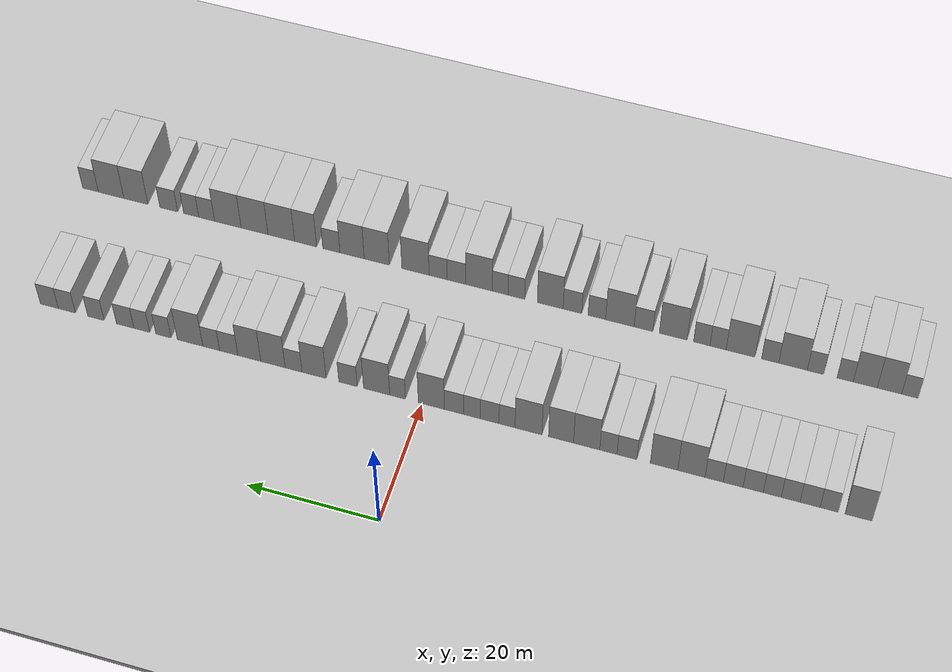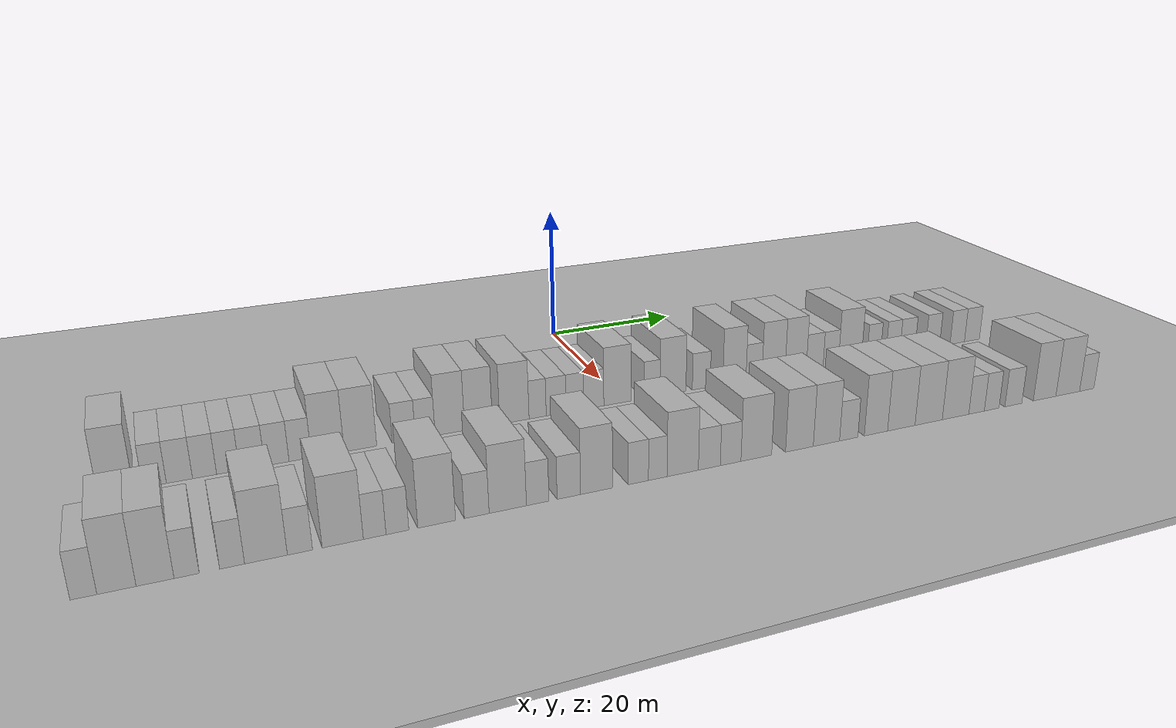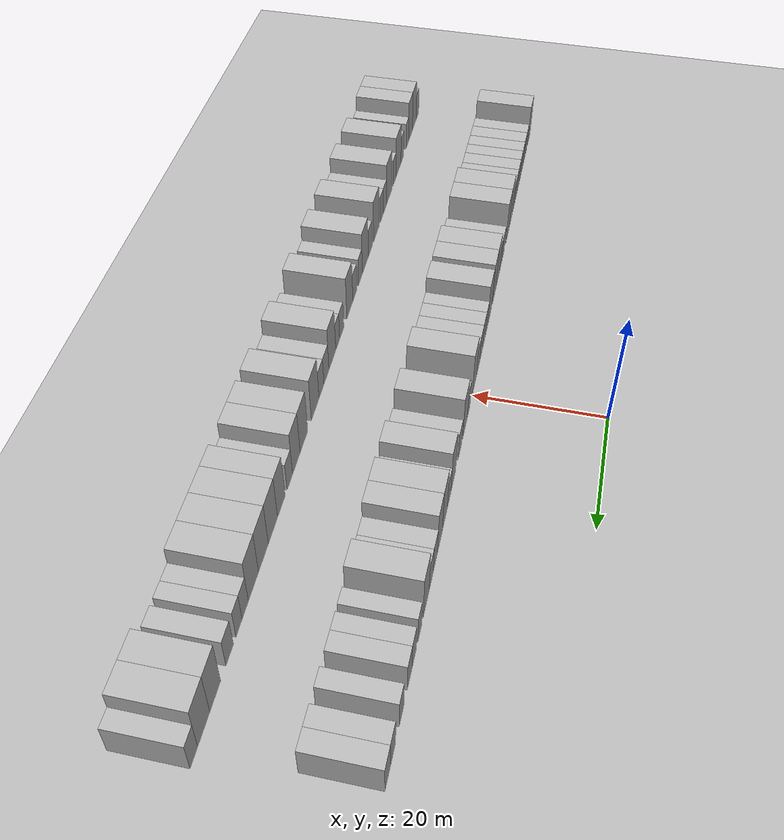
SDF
<sdf version="1.6">
 <world name="default">
  <include><name>ground_plane_1</name><uri>model://HANNAS_ground_plane</uri></include>
  <include>
   <name>ground_plane_2</name>
   <uri>model://HANNAS_ground_plane</uri>
   <pose>100 0 0  0 0 0</pose>
  </include>
  <model name="building_37">
   <static>1</static>
   <pose>25.0000 -65.1978 0 0.000000 0.000000 0.000000</pose>
   <link name="link">
    <pose>0 0 4.50 0 0 0</pose>
    <collision name="collision"><geometry><box><size>10.0000 3.9080 9.0000</size></box></geometry></collision>
    <visual name="visual">
     <cast_shadows>0</cast_shadows>
     <geometry><box><size>10.0000 3.9080 9.0000</size></box></geometry>
     <material>
      <script>
       <uri>model://HANNAS_wall/materials/scripts</uri>
       <uri>model://HANNAS_wall/materials/textures</uri>
       <name>vrc/HANNAS_wall</name>
      </script>
     </material>
    </visual>
   </link>
  </model>
  <model name="building_38">
   <static>1</static>
   <pose>25.0000 -60.9311 0 0.000000 0.000000 0.000000</pose>
   <link name="link">
    <pose>0 0 3.00 0 0 0</pose>
    <collision name="collision"><geometry><box><size>10.0000 2.6255 6.0000</size></box></geometry></collision>
    <visual name="visual">
     <cast_shadows>0</cast_shadows>
     <geometry><box><size>10.0000 2.6255 6.0000</size></box></geometry>
     <material>
      <script>
       <uri>model://HANNAS_wall/materials/scripts</uri>
       <uri>model://HANNAS_wall/materials/textures</uri>
       <name>vrc/HANNAS_wall</name>
      </script>
     </material>
    </visual>
   </link>
  </model>
  <model name="building_39">
   <static>1</static>
   <pose>25.0000 -58.1519 0 0.000000 0.000000 0.000000</pose>
   <link name="link">
    <pose>0 0 3.00 0 0 0</pose>
    <collision name="collision"><geometry><box><size>10.0000 2.9329 6.0000</size></box></geometry></collision>
    <visual name="visual">
     <cast_shadows>0</cast_shadows>
     <geometry><box><size>10.0000 2.9329 6.0000</size></box></geometry>
     <material>
      <script>
       <uri>model://HANNAS_wall/materials/scripts</uri>
       <uri>model://HANNAS_wall/materials/textures</uri>
       <name>vrc/HANNAS_wall</name>
      </script>
     </material>
    </visual>
   </link>
  </model>
  <model name="building_40">
   <static>1</static>
   <pose>25.0000 -55.3146 0 0.000000 0.000000 0.000000</pose>
   <link name="link">
    <pose>0 0 3.00 0 0 0</pose>
    <collision name="collision"><geometry><box><size>10.0000 2.7417 6.0000</size></box></geometry></collision>
    <visual name="visual">
     <cast_shadows>0</cast_shadows>
     <geometry><box><size>10.0000 2.7417 6.0000</size></box></geometry>
     <material>
      <script>
       <uri>model://HANNAS_wall/materials/scripts</uri>
       <uri>model://HANNAS_wall/materials/textures</uri>
       <name>vrc/HANNAS_wall</name>
      </script>
     </material>
    </visual>
   </link>
  </model>
  <model name="building_41">
   <static>1</static>
   <pose>25.0000 -52.6261 0 0.000000 0.000000 0.000000</pose>
   <link name="link">
    <pose>0 0 3.00 0 0 0</pose>
    <collision name="collision"><geometry><box><size>10.0000 2.6354 6.0000</size></box></geometry></collision>
    <visual name="visual">
     <cast_shadows>0</cast_shadows>
     <geometry><box><size>10.0000 2.6354 6.0000</size></box></geometry>
     <material>
      <script>
       <uri>model://HANNAS_wall/materials/scripts</uri>
       <uri>model://HANNAS_wall/materials/textures</uri>
       <name>vrc/HANNAS_wall</name>
      </script>
     </material>
    </visual>
   </link>
  </model>
  <model name="building_42">
   <static>1</static>
   <pose>25.0000 -49.8273 0 0.000000 0.000000 0.000000</pose>
   <link name="link">
    <pose>0 0 3.00 0 0 0</pose>
    <collision name="collision"><geometry><box><size>10.0000 2.9623 6.0000</size></box></geometry></collision>
    <visual name="visual">
     <cast_shadows>0</cast_shadows>
     <geometry><box><size>10.0000 2.9623 6.0000</size></box></geometry>
     <material>
      <script>
       <uri>model://HANNAS_wall/materials/scripts</uri>
       <uri>model://HANNAS_wall/materials/textures</uri>
       <name>vrc/HANNAS_wall</name>
      </script>
     </material>
    </visual>
   </link>
  </model>
  <model name="building_43">
   <static>1</static>
   <pose>25.0000 -46.8888 0 0.000000 0.000000 0.000000</pose>
   <link name="link">
    <pose>0 0 3.00 0 0 0</pose>
    <collision name="collision"><geometry><box><size>10.0000 2.9148 6.0000</size></box></geometry></collision>
    <visual name="visual">
     <cast_shadows>0</cast_shadows>
     <geometry><box><size>10.0000 2.9148 6.0000</size></box></geometry>
     <material>
      <script>
       <uri>model://HANNAS_wall/materials/scripts</uri>
       <uri>model://HANNAS_wall/materials/textures</uri>
       <name>vrc/HANNAS_wall</name>
      </script>
     </material>
    </visual>
   </link>
  </model>
  <model name="building_44">
   <static>1</static>
   <pose>25.0000 -44.0853 0 0.000000 0.000000 0.000000</pose>
   <link name="link">
    <pose>0 0 3.00 0 0 0</pose>
    <collision name="collision"><geometry><box><size>10.0000 2.6921 6.0000</size></box></geometry></collision>
    <visual name="visual">
     <cast_shadows>0</cast_shadows>
     <geometry><box><size>10.0000 2.6921 6.0000</size></box></geometry>
     <material>
      <script>
       <uri>model://HANNAS_wall/materials/scripts</uri>
       <uri>model://HANNAS_wall/materials/textures</uri>
       <name>vrc/HANNAS_wall</name>
      </script>
     </material>
    </visual>
   </link>
  </model>
  <model name="building_45">
   <static>1</static>
   <pose>25.0000 -40.7205 0 0.000000 0.000000 0.000000</pose>
   <link name="link">
    <pose>0 0 4.50 0 0 0</pose>
    <collision name="collision"><geometry><box><size>10.0000 4.0376 9.0000</size></box></geometry></collision>
    <visual name="visual">
     <cast_shadows>0</cast_shadows>
     <geometry><box><size>10.0000 4.0376 9.0000</size></box></geometry>
     <material>
      <script>
       <uri>model://HANNAS_wall/materials/scripts</uri>
       <uri>model://HANNAS_wall/materials/textures</uri>
       <name>vrc/HANNAS_wall</name>
      </script>
     </material>
    </visual>
   </link>
  </model>
  <model name="building_46">
   <static>1</static>
   <pose>25.0000 -36.6584 0 0.000000 0.000000 0.000000</pose>
   <link name="link">
    <pose>0 0 4.50 0 0 0</pose>
    <collision name="collision"><geometry><box><size>10.0000 4.0865 9.0000</size></box></geometry></collision>
    <visual name="visual">
     <cast_shadows>0</cast_shadows>
     <geometry><box><size>10.0000 4.0865 9.0000</size></box></geometry>
     <material>
      <script>
       <uri>model://HANNAS_wall/materials/scripts</uri>
       <uri>model://HANNAS_wall/materials/textures</uri>
       <name>vrc/HANNAS_wall</name>
      </script>
     </material>
    </visual>
   </link>
  </model>
  <model name="building_47">
   <static>1</static>
   <pose>25.0000 -31.1257 0 0.000000 0.000000 0.000000</pose>
   <link name="link">
    <pose>0 0 3.00 0 0 0</pose>
    <collision name="collision"><geometry><box><size>10.0000 2.9789 6.0000</size></box></geometry></collision>
    <visual name="visual">
     <cast_shadows>0</cast_shadows>
     <geometry><box><size>10.0000 2.9789 6.0000</size></box></geometry>
     <material>
      <script>
       <uri>model://HANNAS_wall/materials/scripts</uri>
       <uri>model://HANNAS_wall/materials/textures</uri>
       <name>vrc/HANNAS_wall</name>
      </script>
     </material>
    </visual>
   </link>
  </model>
  <model name="building_48">
   <static>1</static>
   <pose>25.0000 -28.3454 0 0.000000 0.000000 0.000000</pose>
   <link name="link">
    <pose>0 0 3.00 0 0 0</pose>
    <collision name="collision"><geometry><box><size>10.0000 2.5817 6.0000</size></box></geometry></collision>
    <visual name="visual">
     <cast_shadows>0</cast_shadows>
     <geometry><box><size>10.0000 2.5817 6.0000</size></box></geometry>
     <material>
      <script>
       <uri>model://HANNAS_wall/materials/scripts</uri>
       <uri>model://HANNAS_wall/materials/textures</uri>
       <name>vrc/HANNAS_wall</name>
      </script>
     </material>
    </visual>
   </link>
  </model>
  <model name="building_49">
   <static>1</static>
   <pose>25.0000 -25.0832 0 0.000000 0.000000 0.000000</pose>
   <link name="link">
    <pose>0 0 4.50 0 0 0</pose>
    <collision name="collision"><geometry><box><size>10.0000 3.9426 9.0000</size></box></geometry></collision>
    <visual name="visual">
     <cast_shadows>0</cast_shadows>
     <geometry><box><size>10.0000 3.9426 9.0000</size></box></geometry>
     <material>
      <script>
       <uri>model://HANNAS_wall/materials/scripts</uri>
       <uri>model://HANNAS_wall/materials/textures</uri>
       <name>vrc/HANNAS_wall</name>
      </script>
     </material>
    </visual>
   </link>
  </model>
  <model name="building_50">
   <static>1</static>
   <pose>25.0000 -21.2267 0 0.000000 0.000000 0.000000</pose>
   <link name="link">
    <pose>0 0 4.50 0 0 0</pose>
    <collision name="collision"><geometry><box><size>10.0000 3.7704 9.0000</size></box></geometry></collision>
    <visual name="visual">
     <cast_shadows>0</cast_shadows>
     <geometry><box><size>10.0000 3.7704 9.0000</size></box></geometry>
     <material>
      <script>
       <uri>model://HANNAS_wall/materials/scripts</uri>
       <uri>model://HANNAS_wall/materials/textures</uri>
       <name>vrc/HANNAS_wall</name>
      </script>
     </material>
    </visual>
   </link>
  </model>
  <model name="building_51">
   <static>1</static>
   <pose>25.0000 -16.3028 0 0.000000 0.000000 0.000000</pose>
   <link name="link">
    <pose>0 0 4.50 0 0 0</pose>
    <collision name="collision"><geometry><box><size>10.0000 4.0774 9.0000</size></box></geometry></collision>
    <visual name="visual">
     <cast_shadows>0</cast_shadows>
     <geometry><box><size>10.0000 4.0774 9.0000</size></box></geometry>
     <material>
      <script>
       <uri>model://HANNAS_wall/materials/scripts</uri>
       <uri>model://HANNAS_wall/materials/textures</uri>
       <name>vrc/HANNAS_wall</name>
      </script>
     </material>
    </visual>
   </link>
  </model>
  <model name="building_52">
   <static>1</static>
   <pose>25.0000 -13.0524 0 0.000000 0.000000 0.000000</pose>
   <link name="link">
    <pose>0 0 3.00 0 0 0</pose>
    <collision name="collision"><geometry><box><size>10.0000 2.4233 6.0000</size></box></geometry></collision>
    <visual name="visual">
     <cast_shadows>0</cast_shadows>
     <geometry><box><size>10.0000 2.4233 6.0000</size></box></geometry>
     <material>
      <script>
       <uri>model://HANNAS_wall/materials/scripts</uri>
       <uri>model://HANNAS_wall/materials/textures</uri>
       <name>vrc/HANNAS_wall</name>
      </script>
     </material>
    </visual>
   </link>
  </model>
  <model name="building_53">
   <static>1</static>
   <pose>25.0000 -10.4201 0 0.000000 0.000000 0.000000</pose>
   <link name="link">
    <pose>0 0 3.00 0 0 0</pose>
    <collision name="collision"><geometry><box><size>10.0000 2.8413 6.0000</size></box></geometry></collision>
    <visual name="visual">
     <cast_shadows>0</cast_shadows>
     <geometry><box><size>10.0000 2.8413 6.0000</size></box></geometry>
     <material>
      <script>
       <uri>model://HANNAS_wall/materials/scripts</uri>
       <uri>model://HANNAS_wall/materials/textures</uri>
       <name>vrc/HANNAS_wall</name>
      </script>
     </material>
    </visual>
   </link>
  </model>
  <model name="building_54">
   <static>1</static>
   <pose>25.0000 -7.7079 0 0.000000 0.000000 0.000000</pose>
   <link name="link">
    <pose>0 0 3.00 0 0 0</pose>
    <collision name="collision"><geometry><box><size>10.0000 2.5832 6.0000</size></box></geometry></collision>
    <visual name="visual">
     <cast_shadows>0</cast_shadows>
     <geometry><box><size>10.0000 2.5832 6.0000</size></box></geometry>
     <material>
      <script>
       <uri>model://HANNAS_wall/materials/scripts</uri>
       <uri>model://HANNAS_wall/materials/textures</uri>
       <name>vrc/HANNAS_wall</name>
      </script>
     </material>
    </visual>
   </link>
  </model>
  <model name="building_55">
   <static>1</static>
   <pose>25.0000 -4.9535 0 0.000000 0.000000 0.000000</pose>
   <link name="link">
    <pose>0 0 3.00 0 0 0</pose>
    <collision name="collision"><geometry><box><size>10.0000 2.9256 6.0000</size></box></geometry></collision>
    <visual name="visual">
     <cast_shadows>0</cast_shadows>
     <geometry><box><size>10.0000 2.9256 6.0000</size></box></geometry>
     <material>
      <script>
       <uri>model://HANNAS_wall/materials/scripts</uri>
       <uri>model://HANNAS_wall/materials/textures</uri>
       <name>vrc/HANNAS_wall</name>
      </script>
     </material>
    </visual>
   </link>
  </model>
  <model name="building_56">
   <static>1</static>
   <pose>25.0000 -1.4791 0 0.000000 0.000000 0.000000</pose>
   <link name="link">
    <pose>0 0 4.50 0 0 0</pose>
    <collision name="collision"><geometry><box><size>10.0000 4.0232 9.0000</size></box></geometry></collision>
    <visual name="visual">
     <cast_shadows>0</cast_shadows>
     <geometry><box><size>10.0000 4.0232 9.0000</size></box></geometry>
     <material>
      <script>
       <uri>model://HANNAS_wall/materials/scripts</uri>
       <uri>model://HANNAS_wall/materials/textures</uri>
       <name>vrc/HANNAS_wall</name>
      </script>
     </material>
    </visual>
   </link>
  </model>
  <model name="building_57">
   <static>1</static>
   <pose>25.0000 3.7461 0 0.000000 0.000000 0.000000</pose>
   <link name="link">
    <pose>0 0 3.00 0 0 0</pose>
    <collision name="collision"><geometry><box><size>10.0000 2.4273 6.0000</size></box></geometry></collision>
    <visual name="visual">
     <cast_shadows>0</cast_shadows>
     <geometry><box><size>10.0000 2.4273 6.0000</size></box></geometry>
     <material>
      <script>
       <uri>model://HANNAS_wall/materials/scripts</uri>
       <uri>model://HANNAS_wall/materials/textures</uri>
       <name>vrc/HANNAS_wall</name>
      </script>
     </material>
    </visual>
   </link>
  </model>
  <model name="building_58">
   <static>1</static>
   <pose>25.0000 6.9824 0 0.000000 0.000000 0.000000</pose>
   <link name="link">
    <pose>0 0 4.50 0 0 0</pose>
    <collision name="collision"><geometry><box><size>10.0000 4.0455 9.0000</size></box></geometry></collision>
    <visual name="visual">
     <cast_shadows>0</cast_shadows>
     <geometry><box><size>10.0000 4.0455 9.0000</size></box></geometry>
     <material>
      <script>
       <uri>model://HANNAS_wall/materials/scripts</uri>
       <uri>model://HANNAS_wall/materials/textures</uri>
       <name>vrc/HANNAS_wall</name>
      </script>
     </material>
    </visual>
   </link>
  </model>
  <model name="building_59">
   <static>1</static>
   <pose>25.0000 11.4288 0 0.000000 0.000000 0.000000</pose>
   <link name="link">
    <pose>0 0 3.00 0 0 0</pose>
    <collision name="collision"><geometry><box><size>10.0000 2.8472 6.0000</size></box></geometry></collision>
    <visual name="visual">
     <cast_shadows>0</cast_shadows>
     <geometry><box><size>10.0000 2.8472 6.0000</size></box></geometry>
     <material>
      <script>
       <uri>model://HANNAS_wall/materials/scripts</uri>
       <uri>model://HANNAS_wall/materials/textures</uri>
       <name>vrc/HANNAS_wall</name>
      </script>
     </material>
    </visual>
   </link>
  </model>
  <model name="building_60">
   <static>1</static>
   <pose>25.0000 16.7331 0 0.000000 0.000000 0.000000</pose>
   <link name="link">
    <pose>0 0 4.50 0 0 0</pose>
    <collision name="collision"><geometry><box><size>10.0000 3.7613 9.0000</size></box></geometry></collision>
    <visual name="visual">
     <cast_shadows>0</cast_shadows>
     <geometry><box><size>10.0000 3.7613 9.0000</size></box></geometry>
     <material>
      <script>
       <uri>model://HANNAS_wall/materials/scripts</uri>
       <uri>model://HANNAS_wall/materials/textures</uri>
       <name>vrc/HANNAS_wall</name>
      </script>
     </material>
    </visual>
   </link>
  </model>
  <model name="building_61">
   <static>1</static>
   <pose>25.0000 19.9333 0 0.000000 0.000000 0.000000</pose>
   <link name="link">
    <pose>0 0 3.00 0 0 0</pose>
    <collision name="collision"><geometry><box><size>10.0000 2.6391 6.0000</size></box></geometry></collision>
    <visual name="visual">
     <cast_shadows>0</cast_shadows>
     <geometry><box><size>10.0000 2.6391 6.0000</size></box></geometry>
     <material>
      <script>
       <uri>model://HANNAS_wall/materials/scripts</uri>
       <uri>model://HANNAS_wall/materials/textures</uri>
       <name>vrc/HANNAS_wall</name>
      </script>
     </material>
    </visual>
   </link>
  </model>
  <model name="building_62">
   <static>1</static>
   <pose>25.0000 23.1762 0 0.000000 0.000000 0.000000</pose>
   <link name="link">
    <pose>0 0 4.50 0 0 0</pose>
    <collision name="collision"><geometry><box><size>10.0000 3.8467 9.0000</size></box></geometry></collision>
    <visual name="visual">
     <cast_shadows>0</cast_shadows>
     <geometry><box><size>10.0000 3.8467 9.0000</size></box></geometry>
     <material>
      <script>
       <uri>model://HANNAS_wall/materials/scripts</uri>
       <uri>model://HANNAS_wall/materials/textures</uri>
       <name>vrc/HANNAS_wall</name>
      </script>
     </material>
    </visual>
   </link>
  </model>
  <model name="building_63">
   <static>1</static>
   <pose>25.0000 26.9075 0 0.000000 0.000000 0.000000</pose>
   <link name="link">
    <pose>0 0 4.50 0 0 0</pose>
    <collision name="collision"><geometry><box><size>10.0000 3.6161 9.0000</size></box></geometry></collision>
    <visual name="visual">
     <cast_shadows>0</cast_shadows>
     <geometry><box><size>10.0000 3.6161 9.0000</size></box></geometry>
     <material>
      <script>
       <uri>model://HANNAS_wall/materials/scripts</uri>
       <uri>model://HANNAS_wall/materials/textures</uri>
       <name>vrc/HANNAS_wall</name>
      </script>
     </material>
    </visual>
   </link>
  </model>
  <model name="building_64">
   <static>1</static>
   <pose>25.0000 30.1661 0 0.000000 0.000000 0.000000</pose>
   <link name="link">
    <pose>0 0 3.00 0 0 0</pose>
    <collision name="collision"><geometry><box><size>10.0000 2.9011 6.0000</size></box></geometry></collision>
    <visual name="visual">
     <cast_shadows>0</cast_shadows>
     <geometry><box><size>10.0000 2.9011 6.0000</size></box></geometry>
     <material>
      <script>
       <uri>model://HANNAS_wall/materials/scripts</uri>
       <uri>model://HANNAS_wall/materials/textures</uri>
       <name>vrc/HANNAS_wall</name>
      </script>
     </material>
    </visual>
   </link>
  </model>
  <model name="building_65">
   <static>1</static>
   <pose>25.0000 32.9478 0 0.000000 0.000000 0.000000</pose>
   <link name="link">
    <pose>0 0 3.00 0 0 0</pose>
    <collision name="collision"><geometry><box><size>10.0000 2.6622 6.0000</size></box></geometry></collision>
    <visual name="visual">
     <cast_shadows>0</cast_shadows>
     <geometry><box><size>10.0000 2.6622 6.0000</size></box></geometry>
     <material>
      <script>
       <uri>model://HANNAS_wall/materials/scripts</uri>
       <uri>model://HANNAS_wall/materials/textures</uri>
       <name>vrc/HANNAS_wall</name>
      </script>
     </material>
    </visual>
   </link>
  </model>
  <model name="building_66">
   <static>1</static>
   <pose>25.0000 36.3120 0 0.000000 0.000000 0.000000</pose>
   <link name="link">
    <pose>0 0 4.50 0 0 0</pose>
    <collision name="collision"><geometry><box><size>10.0000 4.0663 9.0000</size></box></geometry></collision>
    <visual name="visual">
     <cast_shadows>0</cast_shadows>
     <geometry><box><size>10.0000 4.0663 9.0000</size></box></geometry>
     <material>
      <script>
       <uri>model://HANNAS_wall/materials/scripts</uri>
       <uri>model://HANNAS_wall/materials/textures</uri>
       <name>vrc/HANNAS_wall</name>
      </script>
     </material>
    </visual>
   </link>
  </model>
  <model name="building_67">
   <static>1</static>
   <pose>25.0000 40.5597 0 0.000000 0.000000 0.000000</pose>
   <link name="link">
    <pose>0 0 3.00 0 0 0</pose>
    <collision name="collision"><geometry><box><size>10.0000 2.4290 6.0000</size></box></geometry></collision>
    <visual name="visual">
     <cast_shadows>0</cast_shadows>
     <geometry><box><size>10.0000 2.4290 6.0000</size></box></geometry>
     <material>
      <script>
       <uri>model://HANNAS_wall/materials/scripts</uri>
       <uri>model://HANNAS_wall/materials/textures</uri>
       <name>vrc/HANNAS_wall</name>
      </script>
     </material>
    </visual>
   </link>
  </model>
  <model name="building_68">
   <static>1</static>
   <pose>25.0000 44.0438 0 0.000000 0.000000 0.000000</pose>
   <link name="link">
    <pose>0 0 3.00 0 0 0</pose>
    <collision name="collision"><geometry><box><size>10.0000 2.5394 6.0000</size></box></geometry></collision>
    <visual name="visual">
     <cast_shadows>0</cast_shadows>
     <geometry><box><size>10.0000 2.5394 6.0000</size></box></geometry>
     <material>
      <script>
       <uri>model://HANNAS_wall/materials/scripts</uri>
       <uri>model://HANNAS_wall/materials/textures</uri>
       <name>vrc/HANNAS_wall</name>
      </script>
     </material>
    </visual>
   </link>
  </model>
  <model name="building_69">
   <static>1</static>
   <pose>25.0000 46.7076 0 0.000000 0.000000 0.000000</pose>
   <link name="link">
    <pose>0 0 3.00 0 0 0</pose>
    <collision name="collision"><geometry><box><size>10.0000 2.7882 6.0000</size></box></geometry></collision>
    <visual name="visual">
     <cast_shadows>0</cast_shadows>
     <geometry><box><size>10.0000 2.7882 6.0000</size></box></geometry>
     <material>
      <script>
       <uri>model://HANNAS_wall/materials/scripts</uri>
       <uri>model://HANNAS_wall/materials/textures</uri>
       <name>vrc/HANNAS_wall</name>
      </script>
     </material>
    </visual>
   </link>
  </model>
  <model name="building_70">
   <static>1</static>
   <pose>25.0000 51.4204 0 0.000000 0.000000 0.000000</pose>
   <link name="link">
    <pose>0 0 3.00 0 0 0</pose>
    <collision name="collision"><geometry><box><size>10.0000 2.6373 6.0000</size></box></geometry></collision>
    <visual name="visual">
     <cast_shadows>0</cast_shadows>
     <geometry><box><size>10.0000 2.6373 6.0000</size></box></geometry>
     <material>
      <script>
       <uri>model://HANNAS_wall/materials/scripts</uri>
       <uri>model://HANNAS_wall/materials/textures</uri>
       <name>vrc/HANNAS_wall</name>
      </script>
     </material>
    </visual>
   </link>
  </model>
  <model name="building_71">
   <static>1</static>
   <pose>25.0000 56.1259 0 0.000000 0.000000 0.000000</pose>
   <link name="link">
    <pose>0 0 3.00 0 0 0</pose>
    <collision name="collision"><geometry><box><size>10.0000 2.7737 6.0000</size></box></geometry></collision>
    <visual name="visual">
     <cast_shadows>0</cast_shadows>
     <geometry><box><size>10.0000 2.7737 6.0000</size></box></geometry>
     <material>
      <script>
       <uri>model://HANNAS_wall/materials/scripts</uri>
       <uri>model://HANNAS_wall/materials/textures</uri>
       <name>vrc/HANNAS_wall</name>
      </script>
     </material>
    </visual>
   </link>
  </model>
  <model name="building_72">
   <static>1</static>
   <pose>25.0000 58.9676 0 0.000000 0.000000 0.000000</pose>
   <link name="link">
    <pose>0 0 3.00 0 0 0</pose>
    <collision name="collision"><geometry><box><size>10.0000 2.9098 6.0000</size></box></geometry></collision>
    <visual name="visual">
     <cast_shadows>0</cast_shadows>
     <geometry><box><size>10.0000 2.9098 6.0000</size></box></geometry>
     <material>
      <script>
       <uri>model://HANNAS_wall/materials/scripts</uri>
       <uri>model://HANNAS_wall/materials/textures</uri>
       <name>vrc/HANNAS_wall</name>
      </script>
     </material>
    </visual>
   </link>
  </model>
  <model name="building_145">
   <static>1</static>
   <pose>47.0000 -68.3234 0 0.000000 0.000000 0.000000</pose>
   <link name="link">
    <pose>0 0 3.00 0 0 0</pose>
    <collision name="collision"><geometry><box><size>10.0000 2.4542 6.0000</size></box></geometry></collision>
    <visual name="visual">
     <cast_shadows>0</cast_shadows>
     <geometry><box><size>10.0000 2.4542 6.0000</size></box></geometry>
     <material>
      <script>
       <uri>model://HANNAS_wall/materials/scripts</uri>
       <uri>model://HANNAS_wall/materials/textures</uri>
       <name>vrc/HANNAS_wall</name>
      </script>
     </material>
    </visual>
   </link>
  </model>
  <model name="building_146">
   <static>1</static>
   <pose>47.0000 -65.2760 0 0.000000 0.000000 0.000000</pose>
   <link name="link">
    <pose>0 0 4.50 0 0 0</pose>
    <collision name="collision"><geometry><box><size>10.0000 3.6406 9.0000</size></box></geometry></collision>
    <visual name="visual">
     <cast_shadows>0</cast_shadows>
     <geometry><box><size>10.0000 3.6406 9.0000</size></box></geometry>
     <material>
      <script>
       <uri>model://HANNAS_wall/materials/scripts</uri>
       <uri>model://HANNAS_wall/materials/textures</uri>
       <name>vrc/HANNAS_wall</name>
      </script>
     </material>
    </visual>
   </link>
  </model>
  <model name="building_147">
   <static>1</static>
   <pose>47.0000 -61.6548 0 0.000000 0.000000 0.000000</pose>
   <link name="link">
    <pose>0 0 4.50 0 0 0</pose>
    <collision name="collision"><geometry><box><size>10.0000 3.6019 9.0000</size></box></geometry></collision>
    <visual name="visual">
     <cast_shadows>0</cast_shadows>
     <geometry><box><size>10.0000 3.6019 9.0000</size></box></geometry>
     <material>
      <script>
       <uri>model://HANNAS_wall/materials/scripts</uri>
       <uri>model://HANNAS_wall/materials/textures</uri>
       <name>vrc/HANNAS_wall</name>
      </script>
     </material>
    </visual>
   </link>
  </model>
  <model name="building_148">
   <static>1</static>
   <pose>47.0000 -58.6353 0 0.000000 0.000000 0.000000</pose>
   <link name="link">
    <pose>0 0 3.00 0 0 0</pose>
    <collision name="collision"><geometry><box><size>10.0000 2.4370 6.0000</size></box></geometry></collision>
    <visual name="visual">
     <cast_shadows>0</cast_shadows>
     <geometry><box><size>10.0000 2.4370 6.0000</size></box></geometry>
     <material>
      <script>
       <uri>model://HANNAS_wall/materials/scripts</uri>
       <uri>model://HANNAS_wall/materials/textures</uri>
       <name>vrc/HANNAS_wall</name>
      </script>
     </material>
    </visual>
   </link>
  </model>
  <model name="building_149">
   <static>1</static>
   <pose>47.0000 -54.1750 0 0.000000 0.000000 0.000000</pose>
   <link name="link">
    <pose>0 0 3.00 0 0 0</pose>
    <collision name="collision"><geometry><box><size>10.0000 2.4835 6.0000</size></box></geometry></collision>
    <visual name="visual">
     <cast_shadows>0</cast_shadows>
     <geometry><box><size>10.0000 2.4835 6.0000</size></box></geometry>
     <material>
      <script>
       <uri>model://HANNAS_wall/materials/scripts</uri>
       <uri>model://HANNAS_wall/materials/textures</uri>
       <name>vrc/HANNAS_wall</name>
      </script>
     </material>
    </visual>
   </link>
  </model>
  <model name="building_150">
   <static>1</static>
   <pose>47.0000 -50.7601 0 0.000000 0.000000 0.000000</pose>
   <link name="link">
    <pose>0 0 4.50 0 0 0</pose>
    <collision name="collision"><geometry><box><size>10.0000 4.3464 9.0000</size></box></geometry></collision>
    <visual name="visual">
     <cast_shadows>0</cast_shadows>
     <geometry><box><size>10.0000 4.3464 9.0000</size></box></geometry>
     <material>
      <script>
       <uri>model://HANNAS_wall/materials/scripts</uri>
       <uri>model://HANNAS_wall/materials/textures</uri>
       <name>vrc/HANNAS_wall</name>
      </script>
     </material>
    </visual>
   </link>
  </model>
  <model name="building_151">
   <static>1</static>
   <pose>47.0000 -47.2789 0 0.000000 0.000000 0.000000</pose>
   <link name="link">
    <pose>0 0 3.00 0 0 0</pose>
    <collision name="collision"><geometry><box><size>10.0000 2.6161 6.0000</size></box></geometry></collision>
    <visual name="visual">
     <cast_shadows>0</cast_shadows>
     <geometry><box><size>10.0000 2.6161 6.0000</size></box></geometry>
     <material>
      <script>
       <uri>model://HANNAS_wall/materials/scripts</uri>
       <uri>model://HANNAS_wall/materials/textures</uri>
       <name>vrc/HANNAS_wall</name>
      </script>
     </material>
    </visual>
   </link>
  </model>
  <model name="building_152">
   <static>1</static>
   <pose>47.0000 -42.7703 0 0.000000 0.000000 0.000000</pose>
   <link name="link">
    <pose>0 0 4.50 0 0 0</pose>
    <collision name="collision"><geometry><box><size>10.0000 4.4011 9.0000</size></box></geometry></collision>
    <visual name="visual">
     <cast_shadows>0</cast_shadows>
     <geometry><box><size>10.0000 4.4011 9.0000</size></box></geometry>
     <material>
      <script>
       <uri>model://HANNAS_wall/materials/scripts</uri>
       <uri>model://HANNAS_wall/materials/textures</uri>
       <name>vrc/HANNAS_wall</name>
      </script>
     </material>
    </visual>
   </link>
  </model>
  <model name="building_153">
   <static>1</static>
   <pose>47.0000 -39.3345 0 0.000000 0.000000 0.000000</pose>
   <link name="link">
    <pose>0 0 3.00 0 0 0</pose>
    <collision name="collision"><geometry><box><size>10.0000 2.4706 6.0000</size></box></geometry></collision>
    <visual name="visual">
     <cast_shadows>0</cast_shadows>
     <geometry><box><size>10.0000 2.4706 6.0000</size></box></geometry>
     <material>
      <script>
       <uri>model://HANNAS_wall/materials/scripts</uri>
       <uri>model://HANNAS_wall/materials/textures</uri>
       <name>vrc/HANNAS_wall</name>
      </script>
     </material>
    </visual>
   </link>
  </model>
  <model name="building_154">
   <static>1</static>
   <pose>47.0000 -36.8414 0 0.000000 0.000000 0.000000</pose>
   <link name="link">
    <pose>0 0 3.00 0 0 0</pose>
    <collision name="collision"><geometry><box><size>10.0000 2.5156 6.0000</size></box></geometry></collision>
    <visual name="visual">
     <cast_shadows>0</cast_shadows>
     <geometry><box><size>10.0000 2.5156 6.0000</size></box></geometry>
     <material>
      <script>
       <uri>model://HANNAS_wall/materials/scripts</uri>
       <uri>model://HANNAS_wall/materials/textures</uri>
       <name>vrc/HANNAS_wall</name>
      </script>
     </material>
    </visual>
   </link>
  </model>
  <model name="building_155">
   <static>1</static>
   <pose>47.0000 -32.4428 0 0.000000 0.000000 0.000000</pose>
   <link name="link">
    <pose>0 0 4.50 0 0 0</pose>
    <collision name="collision"><geometry><box><size>10.0000 4.2817 9.0000</size></box></geometry></collision>
    <visual name="visual">
     <cast_shadows>0</cast_shadows>
     <geometry><box><size>10.0000 4.2817 9.0000</size></box></geometry>
     <material>
      <script>
       <uri>model://HANNAS_wall/materials/scripts</uri>
       <uri>model://HANNAS_wall/materials/textures</uri>
       <name>vrc/HANNAS_wall</name>
      </script>
     </material>
    </visual>
   </link>
  </model>
  <model name="building_156">
   <static>1</static>
   <pose>47.0000 -27.8550 0 0.000000 0.000000 0.000000</pose>
   <link name="link">
    <pose>0 0 3.00 0 0 0</pose>
    <collision name="collision"><geometry><box><size>10.0000 2.8938 6.0000</size></box></geometry></collision>
    <visual name="visual">
     <cast_shadows>0</cast_shadows>
     <geometry><box><size>10.0000 2.8938 6.0000</size></box></geometry>
     <material>
      <script>
       <uri>model://HANNAS_wall/materials/scripts</uri>
       <uri>model://HANNAS_wall/materials/textures</uri>
       <name>vrc/HANNAS_wall</name>
      </script>
     </material>
    </visual>
   </link>
  </model>
  <model name="building_157">
   <static>1</static>
   <pose>47.0000 -24.1919 0 0.000000 0.000000 0.000000</pose>
   <link name="link">
    <pose>0 0 4.50 0 0 0</pose>
    <collision name="collision"><geometry><box><size>10.0000 4.4325 9.0000</size></box></geometry></collision>
    <visual name="visual">
     <cast_shadows>0</cast_shadows>
     <geometry><box><size>10.0000 4.4325 9.0000</size></box></geometry>
     <material>
      <script>
       <uri>model://HANNAS_wall/materials/scripts</uri>
       <uri>model://HANNAS_wall/materials/textures</uri>
       <name>vrc/HANNAS_wall</name>
      </script>
     </material>
    </visual>
   </link>
  </model>
  <model name="building_158">
   <static>1</static>
   <pose>47.0000 -20.6106 0 0.000000 0.000000 0.000000</pose>
   <link name="link">
    <pose>0 0 3.00 0 0 0</pose>
    <collision name="collision"><geometry><box><size>10.0000 2.7301 6.0000</size></box></geometry></collision>
    <visual name="visual">
     <cast_shadows>0</cast_shadows>
     <geometry><box><size>10.0000 2.7301 6.0000</size></box></geometry>
     <material>
      <script>
       <uri>model://HANNAS_wall/materials/scripts</uri>
       <uri>model://HANNAS_wall/materials/textures</uri>
       <name>vrc/HANNAS_wall</name>
      </script>
     </material>
    </visual>
   </link>
  </model>
  <model name="building_159">
   <static>1</static>
   <pose>47.0000 -16.7902 0 0.000000 0.000000 0.000000</pose>
   <link name="link">
    <pose>0 0 3.00 0 0 0</pose>
    <collision name="collision"><geometry><box><size>10.0000 2.9107 6.0000</size></box></geometry></collision>
    <visual name="visual">
     <cast_shadows>0</cast_shadows>
     <geometry><box><size>10.0000 2.9107 6.0000</size></box></geometry>
     <material>
      <script>
       <uri>model://HANNAS_wall/materials/scripts</uri>
       <uri>model://HANNAS_wall/materials/textures</uri>
       <name>vrc/HANNAS_wall</name>
      </script>
     </material>
    </visual>
   </link>
  </model>
  <model name="building_160">
   <static>1</static>
   <pose>47.0000 -13.3146 0 0.000000 0.000000 0.000000</pose>
   <link name="link">
    <pose>0 0 4.50 0 0 0</pose>
    <collision name="collision"><geometry><box><size>10.0000 4.0405 9.0000</size></box></geometry></collision>
    <visual name="visual">
     <cast_shadows>0</cast_shadows>
     <geometry><box><size>10.0000 4.0405 9.0000</size></box></geometry>
     <material>
      <script>
       <uri>model://HANNAS_wall/materials/scripts</uri>
       <uri>model://HANNAS_wall/materials/textures</uri>
       <name>vrc/HANNAS_wall</name>
      </script>
     </material>
    </visual>
   </link>
  </model>
  <model name="building_161">
   <static>1</static>
   <pose>47.0000 -7.9783 0 0.000000 0.000000 0.000000</pose>
   <link name="link">
    <pose>0 0 3.00 0 0 0</pose>
    <collision name="collision"><geometry><box><size>10.0000 2.6321 6.0000</size></box></geometry></collision>
    <visual name="visual">
     <cast_shadows>0</cast_shadows>
     <geometry><box><size>10.0000 2.6321 6.0000</size></box></geometry>
     <material>
      <script>
       <uri>model://HANNAS_wall/materials/scripts</uri>
       <uri>model://HANNAS_wall/materials/textures</uri>
       <name>vrc/HANNAS_wall</name>
      </script>
     </material>
    </visual>
   </link>
  </model>
  <model name="building_162">
   <static>1</static>
   <pose>47.0000 -5.4370 0 0.000000 0.000000 0.000000</pose>
   <link name="link">
    <pose>0 0 3.00 0 0 0</pose>
    <collision name="collision"><geometry><box><size>10.0000 2.4504 6.0000</size></box></geometry></collision>
    <visual name="visual">
     <cast_shadows>0</cast_shadows>
     <geometry><box><size>10.0000 2.4504 6.0000</size></box></geometry>
     <material>
      <script>
       <uri>model://HANNAS_wall/materials/scripts</uri>
       <uri>model://HANNAS_wall/materials/textures</uri>
       <name>vrc/HANNAS_wall</name>
      </script>
     </material>
    </visual>
   </link>
  </model>
  <model name="building_163">
   <static>1</static>
   <pose>47.0000 -2.1062 0 0.000000 0.000000 0.000000</pose>
   <link name="link">
    <pose>0 0 4.50 0 0 0</pose>
    <collision name="collision"><geometry><box><size>10.0000 4.2112 9.0000</size></box></geometry></collision>
    <visual name="visual">
     <cast_shadows>0</cast_shadows>
     <geometry><box><size>10.0000 4.2112 9.0000</size></box></geometry>
     <material>
      <script>
       <uri>model://HANNAS_wall/materials/scripts</uri>
       <uri>model://HANNAS_wall/materials/textures</uri>
       <name>vrc/HANNAS_wall</name>
      </script>
     </material>
    </visual>
   </link>
  </model>
  <model name="building_164">
   <static>1</static>
   <pose>47.0000 1.4950 0 0.000000 0.000000 0.000000</pose>
   <link name="link">
    <pose>0 0 3.00 0 0 0</pose>
    <collision name="collision"><geometry><box><size>10.0000 2.9910 6.0000</size></box></geometry></collision>
    <visual name="visual">
     <cast_shadows>0</cast_shadows>
     <geometry><box><size>10.0000 2.9910 6.0000</size></box></geometry>
     <material>
      <script>
       <uri>model://HANNAS_wall/materials/scripts</uri>
       <uri>model://HANNAS_wall/materials/textures</uri>
       <name>vrc/HANNAS_wall</name>
      </script>
     </material>
    </visual>
   </link>
  </model>
  <model name="building_165">
   <static>1</static>
   <pose>47.0000 4.4265 0 0.000000 0.000000 0.000000</pose>
   <link name="link">
    <pose>0 0 3.00 0 0 0</pose>
    <collision name="collision"><geometry><box><size>10.0000 2.8721 6.0000</size></box></geometry></collision>
    <visual name="visual">
     <cast_shadows>0</cast_shadows>
     <geometry><box><size>10.0000 2.8721 6.0000</size></box></geometry>
     <material>
      <script>
       <uri>model://HANNAS_wall/materials/scripts</uri>
       <uri>model://HANNAS_wall/materials/textures</uri>
       <name>vrc/HANNAS_wall</name>
      </script>
     </material>
    </visual>
   </link>
  </model>
  <model name="building_166">
   <static>1</static>
   <pose>47.0000 8.0385 0 0.000000 0.000000 0.000000</pose>
   <link name="link">
    <pose>0 0 4.50 0 0 0</pose>
    <collision name="collision"><geometry><box><size>10.0000 4.3518 9.0000</size></box></geometry></collision>
    <visual name="visual">
     <cast_shadows>0</cast_shadows>
     <geometry><box><size>10.0000 4.3518 9.0000</size></box></geometry>
     <material>
      <script>
       <uri>model://HANNAS_wall/materials/scripts</uri>
       <uri>model://HANNAS_wall/materials/textures</uri>
       <name>vrc/HANNAS_wall</name>
      </script>
     </material>
    </visual>
   </link>
  </model>
  <model name="building_167">
   <static>1</static>
   <pose>47.0000 14.2422 0 0.000000 0.000000 0.000000</pose>
   <link name="link">
    <pose>0 0 4.50 0 0 0</pose>
    <collision name="collision"><geometry><box><size>10.0000 4.0556 9.0000</size></box></geometry></collision>
    <visual name="visual">
     <cast_shadows>0</cast_shadows>
     <geometry><box><size>10.0000 4.0556 9.0000</size></box></geometry>
     <material>
      <script>
       <uri>model://HANNAS_wall/materials/scripts</uri>
       <uri>model://HANNAS_wall/materials/textures</uri>
       <name>vrc/HANNAS_wall</name>
      </script>
     </material>
    </visual>
   </link>
  </model>
  <model name="building_168">
   <static>1</static>
   <pose>47.0000 18.2272 0 0.000000 0.000000 0.000000</pose>
   <link name="link">
    <pose>0 0 4.50 0 0 0</pose>
    <collision name="collision"><geometry><box><size>10.0000 3.9146 9.0000</size></box></geometry></collision>
    <visual name="visual">
     <cast_shadows>0</cast_shadows>
     <geometry><box><size>10.0000 3.9146 9.0000</size></box></geometry>
     <material>
      <script>
       <uri>model://HANNAS_wall/materials/scripts</uri>
       <uri>model://HANNAS_wall/materials/textures</uri>
       <name>vrc/HANNAS_wall</name>
      </script>
     </material>
    </visual>
   </link>
  </model>
  <model name="building_169">
   <static>1</static>
   <pose>47.0000 21.5699 0 0.000000 0.000000 0.000000</pose>
   <link name="link">
    <pose>0 0 3.00 0 0 0</pose>
    <collision name="collision"><geometry><box><size>10.0000 2.7707 6.0000</size></box></geometry></collision>
    <visual name="visual">
     <cast_shadows>0</cast_shadows>
     <geometry><box><size>10.0000 2.7707 6.0000</size></box></geometry>
     <material>
      <script>
       <uri>model://HANNAS_wall/materials/scripts</uri>
       <uri>model://HANNAS_wall/materials/textures</uri>
       <name>vrc/HANNAS_wall</name>
      </script>
     </material>
    </visual>
   </link>
  </model>
  <model name="building_170">
   <static>1</static>
   <pose>47.0000 25.7554 0 0.000000 0.000000 0.000000</pose>
   <link name="link">
    <pose>0 0 4.50 0 0 0</pose>
    <collision name="collision"><geometry><box><size>10.0000 3.6004 9.0000</size></box></geometry></collision>
    <visual name="visual">
     <cast_shadows>0</cast_shadows>
     <geometry><box><size>10.0000 3.6004 9.0000</size></box></geometry>
     <material>
      <script>
       <uri>model://HANNAS_wall/materials/scripts</uri>
       <uri>model://HANNAS_wall/materials/textures</uri>
       <name>vrc/HANNAS_wall</name>
      </script>
     </material>
    </visual>
   </link>
  </model>
  <model name="building_171">
   <static>1</static>
   <pose>47.0000 29.7286 0 0.000000 0.000000 0.000000</pose>
   <link name="link">
    <pose>0 0 4.50 0 0 0</pose>
    <collision name="collision"><geometry><box><size>10.0000 4.3460 9.0000</size></box></geometry></collision>
    <visual name="visual">
     <cast_shadows>0</cast_shadows>
     <geometry><box><size>10.0000 4.3460 9.0000</size></box></geometry>
     <material>
      <script>
       <uri>model://HANNAS_wall/materials/scripts</uri>
       <uri>model://HANNAS_wall/materials/textures</uri>
       <name>vrc/HANNAS_wall</name>
      </script>
     </material>
    </visual>
   </link>
  </model>
  <model name="building_172">
   <static>1</static>
   <pose>47.0000 34.1010 0 0.000000 0.000000 0.000000</pose>
   <link name="link">
    <pose>0 0 4.50 0 0 0</pose>
    <collision name="collision"><geometry><box><size>10.0000 4.3989 9.0000</size></box></geometry></collision>
    <visual name="visual">
     <cast_shadows>0</cast_shadows>
     <geometry><box><size>10.0000 4.3989 9.0000</size></box></geometry>
     <material>
      <script>
       <uri>model://HANNAS_wall/materials/scripts</uri>
       <uri>model://HANNAS_wall/materials/textures</uri>
       <name>vrc/HANNAS_wall</name>
      </script>
     </material>
    </visual>
   </link>
  </model>
  <model name="building_173">
   <static>1</static>
   <pose>47.0000 38.4857 0 0.000000 0.000000 0.000000</pose>
   <link name="link">
    <pose>0 0 4.50 0 0 0</pose>
    <collision name="collision"><geometry><box><size>10.0000 4.3704 9.0000</size></box></geometry></collision>
    <visual name="visual">
     <cast_shadows>0</cast_shadows>
     <geometry><box><size>10.0000 4.3704 9.0000</size></box></geometry>
     <material>
      <script>
       <uri>model://HANNAS_wall/materials/scripts</uri>
       <uri>model://HANNAS_wall/materials/textures</uri>
       <name>vrc/HANNAS_wall</name>
      </script>
     </material>
    </visual>
   </link>
  </model>
  <model name="building_174">
   <static>1</static>
   <pose>47.0000 41.9758 0 0.000000 0.000000 0.000000</pose>
   <link name="link">
    <pose>0 0 3.00 0 0 0</pose>
    <collision name="collision"><geometry><box><size>10.0000 2.6099 6.0000</size></box></geometry></collision>
    <visual name="visual">
     <cast_shadows>0</cast_shadows>
     <geometry><box><size>10.0000 2.6099 6.0000</size></box></geometry>
     <material>
      <script>
       <uri>model://HANNAS_wall/materials/scripts</uri>
       <uri>model://HANNAS_wall/materials/textures</uri>
       <name>vrc/HANNAS_wall</name>
      </script>
     </material>
    </visual>
   </link>
  </model>
  <model name="building_175">
   <static>1</static>
   <pose>47.0000 44.5266 0 0.000000 0.000000 0.000000</pose>
   <link name="link">
    <pose>0 0 3.00 0 0 0</pose>
    <collision name="collision"><geometry><box><size>10.0000 2.4916 6.0000</size></box></geometry></collision>
    <visual name="visual">
     <cast_shadows>0</cast_shadows>
     <geometry><box><size>10.0000 2.4916 6.0000</size></box></geometry>
     <material>
      <script>
       <uri>model://HANNAS_wall/materials/scripts</uri>
       <uri>model://HANNAS_wall/materials/textures</uri>
       <name>vrc/HANNAS_wall</name>
      </script>
     </material>
    </visual>
   </link>
  </model>
  <model name="building_176">
   <static>1</static>
   <pose>47.0000 48.2429 0 0.000000 0.000000 0.000000</pose>
   <link name="link">
    <pose>0 0 3.00 0 0 0</pose>
    <collision name="collision"><geometry><box><size>10.0000 2.9412 6.0000</size></box></geometry></collision>
    <visual name="visual">
     <cast_shadows>0</cast_shadows>
     <geometry><box><size>10.0000 2.9412 6.0000</size></box></geometry>
     <material>
      <script>
       <uri>model://HANNAS_wall/materials/scripts</uri>
       <uri>model://HANNAS_wall/materials/textures</uri>
       <name>vrc/HANNAS_wall</name>
      </script>
     </material>
    </visual>
   </link>
  </model>
  <model name="building_177">
   <static>1</static>
   <pose>47.0000 53.7137 0 0.000000 0.000000 0.000000</pose>
   <link name="link">
    <pose>0 0 4.50 0 0 0</pose>
    <collision name="collision"><geometry><box><size>10.0000 4.0004 9.0000</size></box></geometry></collision>
    <visual name="visual">
     <cast_shadows>0</cast_shadows>
     <geometry><box><size>10.0000 4.0004 9.0000</size></box></geometry>
     <material>
      <script>
       <uri>model://HANNAS_wall/materials/scripts</uri>
       <uri>model://HANNAS_wall/materials/textures</uri>
       <name>vrc/HANNAS_wall</name>
      </script>
     </material>
    </visual>
   </link>
  </model>
  <model name="building_178">
   <static>1</static>
   <pose>47.0000 57.8544 0 0.000000 0.000000 0.000000</pose>
   <link name="link">
    <pose>0 0 4.50 0 0 0</pose>
    <collision name="collision"><geometry><box><size>10.0000 4.2809 9.0000</size></box></geometry></collision>
    <visual name="visual">
     <cast_shadows>0</cast_shadows>
     <geometry><box><size>10.0000 4.2809 9.0000</size></box></geometry>
     <material>
      <script>
       <uri>model://HANNAS_wall/materials/scripts</uri>
       <uri>model://HANNAS_wall/materials/textures</uri>
       <name>vrc/HANNAS_wall</name>
      </script>
     </material>
    </visual>
   </link>
  </model>
  <model name="building_179">
   <static>1</static>
   <pose>47.0000 61.3026 0 0.000000 0.000000 0.000000</pose>
   <link name="link">
    <pose>0 0 3.00 0 0 0</pose>
    <collision name="collision"><geometry><box><size>10.0000 2.6156 6.0000</size></box></geometry></collision>
    <visual name="visual">
     <cast_shadows>0</cast_shadows>
     <geometry><box><size>10.0000 2.6156 6.0000</size></box></geometry>
     <material>
      <script>
       <uri>model://HANNAS_wall/materials/scripts</uri>
       <uri>model://HANNAS_wall/materials/textures</uri>
       <name>vrc/HANNAS_wall</name>
      </script>
     </material>
    </visual>
   </link>
  </model>
 </world>
</sdf>
